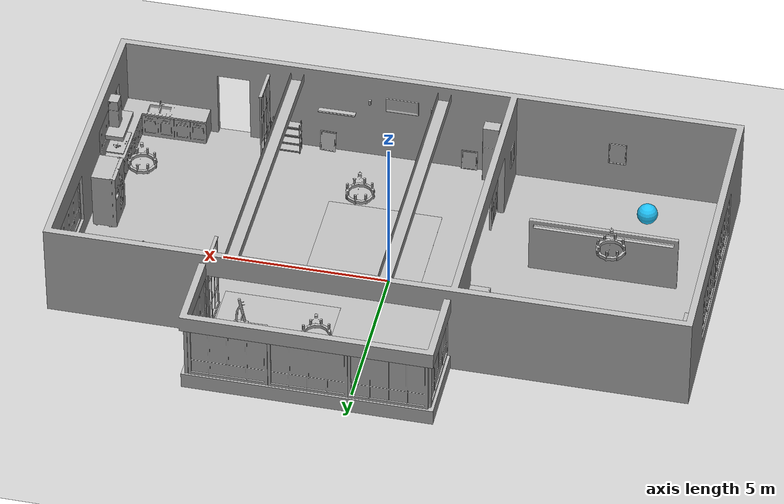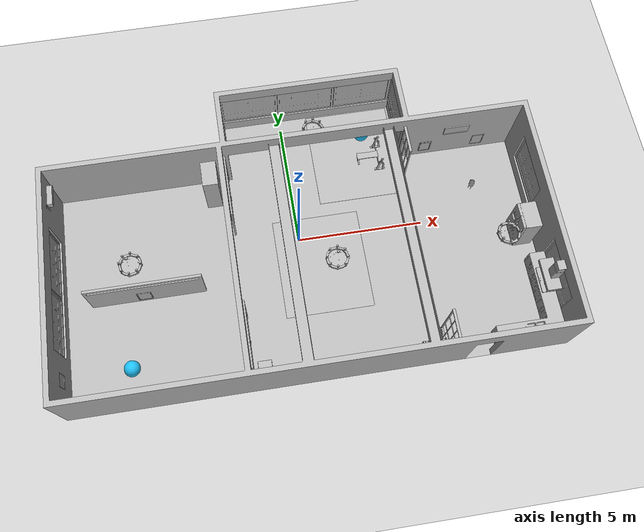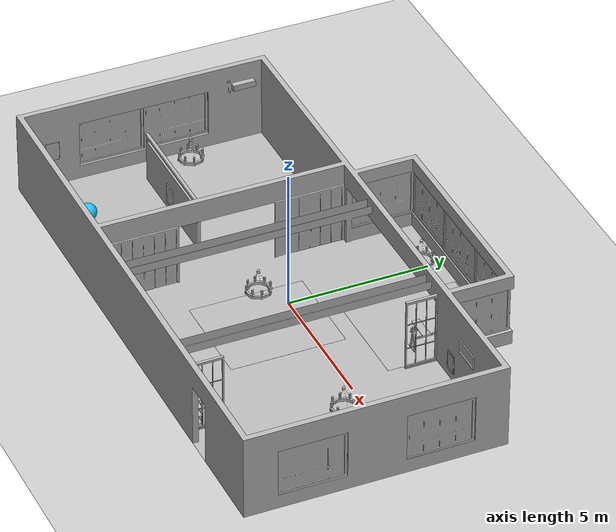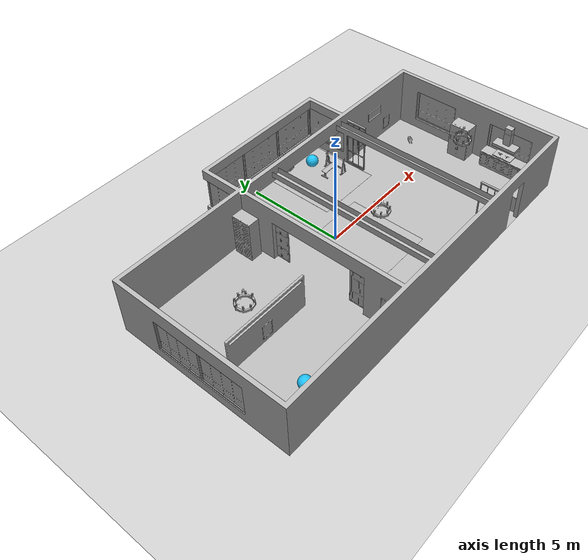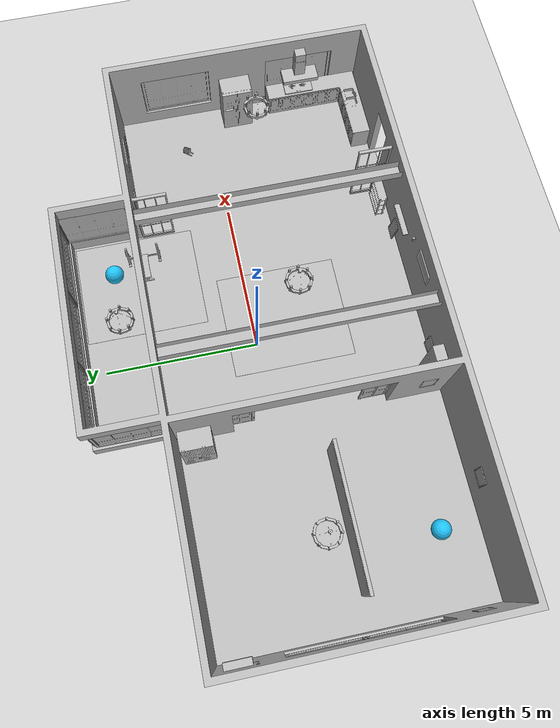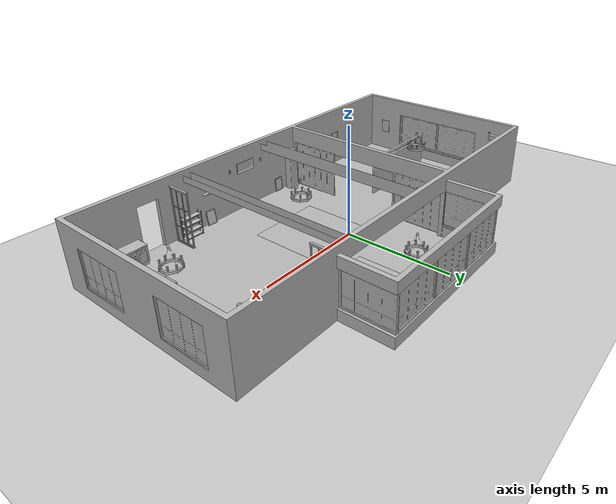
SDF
<sdf version="1.9">
 <world name="small_house">
  <physics name="1ms" type="ignored">
   <max_step_size>0.001</max_step_size>
   <real_time_factor>1.0</real_time_factor>
  </physics>
  <plugin filename="gz-sim-physics-system" name="gz::sim::systems::Physics"/>
  <plugin filename="gz-sim-user-commands-system" name="gz::sim::systems::UserCommands"/>
  <plugin filename="gz-sim-scene-broadcaster-system" name="gz::sim::systems::SceneBroadcaster"/>
  <plugin filename="gz-sim-sensors-system" name="gz::sim::systems::Sensors">
   <render_engine>ogre2</render_engine>
  </plugin>
  <scene><ambient>0.4 0.4 0.4 1</ambient><background>0.7 0.7 0.7 1</background><shadows>false</shadows></scene>
  <model name="ground_plane">
   <static>true</static>
   <link name="link">
    <collision name="collision">
     <geometry><plane><normal>0 0 1</normal><size>100 100</size></plane></geometry>
    </collision>
    <visual name="visual">
     <geometry><plane><normal>0 0 1</normal><size>100 100</size></plane></geometry>
     <material>
      <ambient>0.8 0.8 0.8 1</ambient>
      <diffuse>0.8 0.8 0.8 1</diffuse>
      <specular>0.8 0.8 0.8 1</specular>
     </material>
    </visual>
    <inertial>
     <mass>1.0</mass>
     <inertia><ixx>0.1</ixx><ixy>0</ixy><ixz>0</ixz><iyy>0.1</iyy><iyz>0</iyz><izz>0.1</izz></inertia>
    </inertial>
   </link>
  </model>
  <light type="directional" name="sun">
   <pose>0 0 10 0 0 0</pose>
   <diffuse>0.8 0.8 0.8 1</diffuse>
   <specular>0.2 0.2 0.2 1</specular>
   <direction>-0.5 0.1 -0.9</direction>
  </light>
  <model name="AirconditionerA_01_001">
   <static>true</static>
   <include><uri>model://aws_robomaker_residential_AirconditionerA_01</uri></include>
   <pose>-9.19941 2.41123 2.08454 0 -0 0</pose>
  </model>
  <model name="AirconditionerB_01_001">
   <static>true</static>
   <include><uri>model://aws_robomaker_residential_AirconditionerB_01</uri></include>
   <pose>-2.00466 -5.22661 0.00348 0 -0 0</pose>
  </model>
  <model name="Ball_01_001">
   <static>true</static>
   <include><uri>model://aws_robomaker_residential_Ball_01</uri></include>
   <pose>3.2955 4.22567 0.31868 0 -0 0</pose>
  </model>
  <model name="Ball_01_003">
   <static>true</static>
   <include><uri>model://aws_robomaker_residential_Ball_01</uri></include>
   <pose>-6.9455 -4.22174 0.31868 0 -0 0</pose>
  </model>
  <model name="Board_01_001">
   <static>true</static>
   <include><uri>model://aws_robomaker_residential_Board_01</uri></include>
   <pose>2.77907 -5.3927 1.53817 0 -0 0</pose>
  </model>
  <model name="Chandelier_01_001">
   <static>true</static>
   <include><uri>model://aws_robomaker_residential_Chandelier_01</uri></include>
   <pose>1.22106 4.15574 1.295 0 -0 0</pose>
  </model>
  <model name="Chandelier_01_002">
   <static>true</static>
   <include><uri>model://aws_robomaker_residential_Chandelier_01</uri></include>
   <pose>-6.45106 -0.69204 1.81 0 -0 0</pose>
  </model>
  <model name="Chandelier_01_003">
   <static>true</static>
   <include><uri>model://aws_robomaker_residential_Chandelier_01</uri></include>
   <pose>7.82406 -1.59 1.751 0 -0 0</pose>
  </model>
  <model name="Chandelier_01_004">
   <static>true</static>
   <include><uri>model://aws_robomaker_residential_Chandelier_01</uri></include>
   <pose>1.22106 -1.59204 1.7873 0 -0 0</pose>
  </model>
  <model name="Carpet_01_001">
   <static>true</static>
   <include><uri>model://aws_robomaker_residential_Carpet_01</uri></include>
   <pose>0.78505 -1.10665 0.00111 0 -0 0</pose>
  </model>
  <model name="Carpet_01_002">
   <static>true</static>
   <include><uri>model://aws_robomaker_residential_Carpet_01</uri></include>
   <pose>2.85405 3.45 0.00059 0 -0 0</pose>
  </model>
  <model name="CookingBench_01_001">
   <static>true</static>
   <include><uri>model://aws_robomaker_residential_CookingBench_01</uri></include>
   <pose>9.03838 -3.35114 0.90361 0 -0 3.13713</pose>
  </model>
  <model name="FitnessEquipment_01_001">
   <static>true</static>
   <include><uri>model://aws_robomaker_residential_FitnessEquipment_01</uri></include>
   <pose>3.48472 3.1691 0.00317 0 -0 0</pose>
  </model>
  <model name="FoldingDoor_01_001">
   <static>true</static>
   <include><uri>model://aws_robomaker_residential_FoldingDoor_01</uri></include>
   <pose>-2.4611 1.84422 0.04188 0 -0 0</pose>
  </model>
  <model name="FoldingDoor_01_002">
   <static>true</static>
   <include><uri>model://aws_robomaker_residential_FoldingDoor_01</uri></include>
   <pose>-2.4611 -4.05332 0.04188 0 -0 0</pose>
  </model>
  <model name="HouseWallB_01_001">
   <static>true</static>
   <include><uri>model://aws_robomaker_residential_HouseWallB_01</uri></include>
  </model>
  <model name="FloorB_01_001">
   <static>true</static>
   <include><uri>model://aws_robomaker_residential_FloorB_01</uri></include>
  </model>
  <model name="FoldingDoor_02_001">
   <static>true</static>
   <include><uri>model://aws_robomaker_residential_FoldingDoor_02</uri></include>
   <pose>4.67423 2.46451 0 0 -0 3.14159</pose>
  </model>
  <model name="FoldingDoor_02_002">
   <static>true</static>
   <include><uri>model://aws_robomaker_residential_FoldingDoor_02</uri></include>
   <pose>4.8912 -4.84968 0 0 -0 0</pose>
  </model>
  <model name="KitchenCabinet_01_001">
   <static>true</static>
   <include><uri>model://aws_robomaker_residential_KitchenCabinet_01</uri></include>
   <pose>8.00201 -3.83651 0.01207 0 -0 -3.14</pose>
  </model>
  <model name="LightC_01_001">
   <static>true</static>
   <include><uri>model://aws_robomaker_residential_LightC_01</uri></include>
   <pose>1.76957 -5.44437 2 0 -0 0</pose>
  </model>
  <model name="LightC_01_002">
   <static>true</static>
   <include><uri>model://aws_robomaker_residential_LightC_01</uri></include>
   <pose>-0.13825 -5.44437 2 0 -0 0</pose>
  </model>
  <model name="PortraitA_01">
   <static>true</static>
   <include><uri>model://aws_robomaker_residential_PortraitA_01</uri></include>
   <pose>-2.71236 -4.81754 1 0 -0 1.5668</pose>
  </model>
  <model name="PortraitB_01">
   <static>true</static>
   <include><uri>model://aws_robomaker_residential_PortraitB_01</uri></include>
   <pose>-1.27968 -5.42963 0 -0.0769 0 -3.11672</pose>
  </model>
  <model name="PortraitB_02">
   <static>true</static>
   <include><uri>model://aws_robomaker_residential_PortraitB_02</uri></include>
   <pose>5.73702 3.08031 0.3 0 -0 0</pose>
  </model>
  <model name="PortraitB_03">
   <static>true</static>
   <include><uri>model://aws_robomaker_residential_PortraitB_03</uri></include>
   <pose>3.07138 -5.34937 0.00549 -0.16843 0 3.10423</pose>
  </model>
  <model name="PortraitA_02">
   <static>true</static>
   <include><uri>model://aws_robomaker_residential_PortraitA_02</uri></include>
   <pose>7.93702 3.08031 0.3 0 -0 3.14</pose>
  </model>
  <model name="PortraitC_01">
   <static>true</static>
   <include><uri>model://aws_robomaker_residential_PortraitC_01</uri></include>
   <pose>-9.2949 -4.52608 1 0 -0 1.55473</pose>
  </model>
  <model name="PortraitD_01">
   <static>true</static>
   <include><uri>model://aws_robomaker_residential_PortraitD_01</uri></include>
   <pose>0.78976 -5.47873 1.8 0 -0 3.13853</pose>
  </model>
  <model name="PortraitD_02">
   <static>true</static>
   <include><uri>model://aws_robomaker_residential_PortraitD_02</uri></include>
   <pose>6.87018 3.08031 1.48844 0 -0 0</pose>
  </model>
  <model name="PortraitE_01">
   <static>true</static>
   <include><uri>model://aws_robomaker_residential_PortraitE_01</uri></include>
   <pose>-5.77309 -5.49247 1 0 -0 3.13263</pose>
  </model>
  <model name="PortraitE_02">
   <static>true</static>
   <include><uri>model://aws_robomaker_residential_PortraitE_02</uri></include>
   <pose>-6.19303 -1.59021 0.3 0 -0 0.00429</pose>
  </model>
  <model name="Rangehood_01_001">
   <static>true</static>
   <include><uri>model://aws_robomaker_residential_Rangehood_01</uri></include>
   <pose>9.01979 -3.36994 1.50761 0 -0 0</pose>
  </model>
  <model name="Refrigerator_01_001">
   <static>true</static>
   <include><uri>model://aws_robomaker_residential_Refrigerator_01</uri></include>
   <pose>8.70273 -1.03203 0 0 -0 -1.5635</pose>
  </model>
  <model name="ShoeRack_01_001">
   <static>true</static>
   <include><uri>model://aws_robomaker_residential_ShoeRack_01</uri></include>
   <pose>4.29798 -5.17357 0 0 -0 0</pose>
  </model>
  <model name="Tableware_01_001">
   <static>true</static>
   <include><uri>model://aws_robomaker_residential_Tableware_01</uri></include>
   <pose>7.15317 0.98277 0.81781 -0.00124 -0.00098 1.02476</pose>
  </model>
  <model name="RoomWall_01_001">
   <static>true</static>
   <include><uri>model://aws_robomaker_residential_RoomWall_01</uri></include>
   <pose>-6.09755 -1.49618 0.02812 0 -0 0</pose>
  </model>
  <model name="Wardrobe_01_001">
   <static>true</static>
   <include><uri>model://aws_robomaker_residential_Wardrobe_01</uri></include>
   <pose>-3.14671 2.4762 0.0007 0 -0 -1.56967</pose>
  </model>
  <model name="RoomWindow_01_001">
   <static>true</static>
   <include><uri>model://aws_robomaker_residential_RoomWindow_01</uri></include>
   <pose>-9.4186 -0.02629 0.50274 0 -0 0</pose>
  </model>
  <model name="RoomWindow_01_002">
   <static>true</static>
   <include><uri>model://aws_robomaker_residential_RoomWindow_01</uri></include>
   <pose>-9.4186 -2.37409 0.50274 0 -0 0</pose>
  </model>
  <model name="RoomWindow_01_003">
   <static>true</static>
   <include><uri>model://aws_robomaker_residential_RoomWindow_01</uri></include>
   <pose>9.42262 -3.37398 0.50274 0 -0 -3.1361</pose>
  </model>
  <model name="RoomWindow_01_004">
   <static>true</static>
   <include><uri>model://aws_robomaker_residential_RoomWindow_01</uri></include>
   <pose>9.42256 0.96852 0.49658 0 -0 -3.1361</pose>
  </model>
  <model name="RoomWindow_01_005">
   <static>true</static>
   <include><uri>model://aws_robomaker_residential_RoomWindow_01</uri></include>
   <pose>4.72232 4.47028 0.50274 0 -0 -3.1361</pose>
  </model>
  <model name="RoomWindow_01_006">
   <static>true</static>
   <include><uri>model://aws_robomaker_residential_RoomWindow_01</uri></include>
   <pose>3.48852 5.60069 0.50274 0 -0 -1.56627</pose>
  </model>
  <model name="RoomWindow_01_007">
   <static>true</static>
   <include><uri>model://aws_robomaker_residential_RoomWindow_01</uri></include>
   <pose>1.14095 5.60069 0.50274 0 -0 -1.56627</pose>
  </model>
  <model name="RoomWindow_01_008">
   <static>true</static>
   <include><uri>model://aws_robomaker_residential_RoomWindow_01</uri></include>
   <pose>-1.19934 5.60069 0.50274 0 -0 -1.56627</pose>
  </model>
  <model name="RoomWindow_01_009">
   <static>true</static>
   <include><uri>model://aws_robomaker_residential_RoomWindow_01</uri></include>
   <pose>-2.39662 4.38761 0.50274 0 -0 0</pose>
  </model>
  <light name="LivingRoom_CeilingLight_0" type="point">
   <pose>1.1943 4.15576 2.2 0 -0 0</pose>
   <diffuse>0.5 0.5 0.5 1</diffuse>
   <specular>0.1 0.1 0.1 1</specular>
   <attenuation>
    <range>20</range>
    <constant>0.32</constant>
    <linear>0.01</linear>
    <quadratic>0.03</quadratic>
   </attenuation>
   <cast_shadows>false</cast_shadows>
   <direction>0 0 -1</direction>
  </light>
  <light name="LivingRoom_CeilingLight_1" type="point">
   <pose>1.1943 -1.59 2.2 0 -0 0</pose>
   <diffuse>0.5 0.5 0.5 1</diffuse>
   <specular>0.1 0.1 0.1 1</specular>
   <attenuation>
    <range>20</range>
    <constant>0.05</constant>
    <linear>0.01</linear>
    <quadratic>0.09</quadratic>
   </attenuation>
   <cast_shadows>false</cast_shadows>
   <direction>0 0 -1</direction>
  </light>
  <light name="LivingRoom_WallLight_0" type="point">
   <pose>1.76956 -5.44437 2.2 0 -0 0</pose>
   <diffuse>0.24 0.24 0.24 1</diffuse>
   <specular>0.1 0.1 0.1 1</specular>
   <attenuation>
    <range>20</range>
    <constant>0.12</constant>
    <linear>0</linear>
    <quadratic>0.03</quadratic>
   </attenuation>
   <direction>0 0 -1</direction>
  </light>
  <light name="LivingRoom_WallLight_1" type="point">
   <pose>-0.13826 -5.44437 2.2 0 -0 0</pose>
   <diffuse>0.24 0.24 0.24 1</diffuse>
   <specular>0.1 0.1 0.1 1</specular>
   <attenuation>
    <range>20</range>
    <constant>0.12</constant>
    <linear>0</linear>
    <quadratic>0.03</quadratic>
   </attenuation>
   <direction>0 0 -1</direction>
  </light>
  <light name="TV_Light_0" type="point">
   <pose>0.8269 -4.93958 1.1 0 -0 0</pose>
   <diffuse>0.31 0.31 0.35 1</diffuse>
   <specular>0.1 0.1 0.1 1</specular>
   <attenuation>
    <range>3</range>
    <constant>0.1</constant>
    <linear>0.04</linear>
    <quadratic>0.5</quadratic>
   </attenuation>
   <direction>0 0 -1</direction>
  </light>
  <light name="BedRoom_Portrait_Light_0" type="spot">
   <pose>-6.19 -1.8297 1.5587 0.3 -0 0</pose>
   <diffuse>0.5 0.5 0.5 1</diffuse>
   <specular>0.1 0.1 0.1 1</specular>
   <attenuation>
    <range>20</range>
    <constant>0.5</constant>
    <linear>0.01</linear>
    <quadratic>0</quadratic>
   </attenuation>
   <spot><inner_angle>0.6</inner_angle><outer_angle>1</outer_angle><falloff>1</falloff></spot>
   <direction>0 0 -1</direction>
  </light>
  <light name="BedRoom_CeilingLight_0" type="point">
   <pose>-6.45106 -0.69204 2 0 -0 0</pose>
   <diffuse>0.5 0.5 0.5 1</diffuse>
   <specular>0.1 0.1 0.1 1</specular>
   <attenuation>
    <range>20</range>
    <constant>0.32</constant>
    <linear>0.01</linear>
    <quadratic>0.03</quadratic>
   </attenuation>
   <cast_shadows>false</cast_shadows>
   <direction>0 0 -1</direction>
  </light>
  <light name="Kitchen_CeilingLight_0" type="point">
   <pose>7.8582 -1.5905 2.28 0 -0 0</pose>
   <diffuse>0.5 0.5 0.5 1</diffuse>
   <specular>0.1 0.1 0.1 1</specular>
   <attenuation>
    <range>20</range>
    <constant>0.3</constant>
    <linear>0.01</linear>
    <quadratic>0.01</quadratic>
   </attenuation>
   <cast_shadows>false</cast_shadows>
   <direction>0 0 -1</direction>
  </light>
 </world>
</sdf>

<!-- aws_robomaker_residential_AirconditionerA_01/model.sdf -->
<sdf version="1.6">
  <model name="aws_robomaker_residential_AirconditionerA_01">
    <link name="link">
      <inertial>
        <mass>1</mass>
            <inertia>
        <ixx>0.1</ixx><ixy>0</ixy><ixz>0</ixz>
        <iyy>0.1</iyy><iyz>0</iyz>
        <izz>0.1</izz>
      </inertia>
    </inertial>
      <collision name="collision">
        <geometry>
          <mesh>
            <uri>model://aws_robomaker_residential_AirconditionerA_01/meshes/aws_AirconditionerA_01_collision.DAE</uri>
            <scale>1 1 1</scale>
          </mesh>
        </geometry>
      </collision>
      <visual name="visual">
	    <geometry>
          <mesh>
            <uri>model://aws_robomaker_residential_AirconditionerA_01/meshes/aws_AirconditionerA_01_visual.DAE</uri>
          </mesh>
        </geometry>
      <meta> <layer> 1 </layer></meta>
</visual>
    </link>
	<static>1</static>
  </model>
</sdf>

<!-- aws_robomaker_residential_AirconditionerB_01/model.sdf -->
<sdf version="1.6">
  <model name="aws_robomaker_residential_AirconditionerB_01">
    <link name="link">
      <inertial>
        <mass>1</mass>
            <inertia>
        <ixx>0.1</ixx><ixy>0</ixy><ixz>0</ixz>
        <iyy>0.1</iyy><iyz>0</iyz>
        <izz>0.1</izz>
      </inertia>
    </inertial>
      <collision name="collision">
        <geometry>
          <mesh>
            <uri>model://aws_robomaker_residential_AirconditionerB_01/meshes/aws_AirconditionerB_01_collision.DAE</uri>
            <scale>1 1 1</scale>
          </mesh>
        </geometry>
      </collision>
      <visual name="visual">
	    <geometry>
          <mesh>
            <uri>model://aws_robomaker_residential_AirconditionerB_01/meshes/aws_AirconditionerB_01_visual.DAE</uri>
          </mesh>
        </geometry>
      <meta> <layer> 1 </layer></meta>
</visual>
    </link>
  </model>
</sdf>

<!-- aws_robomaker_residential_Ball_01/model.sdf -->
<sdf version="1.6">
  <model name="aws_robomaker_residential_Ball_01">
    <link name="link">
      <inertial>
        <mass>0.12</mass>

          <inertia>
            <ixx>0.030752</ixx>
            <ixy>0</ixy>
            <ixz>0</ixz>
            <iyy>0.030752</iyy>
            <iyz>0</iyz>
            <izz>0.030752</izz>
          </inertia>
      </inertial>
      <collision name="collision">

        <geometry>

          <sphere>
            <radius>0.31 </radius>
          </sphere>

        </geometry>

        <surface>
          <friction>
            <ode>
              <mu>0.85</mu>
              <mu2>0.85</mu2>
            </ode>
          </friction>

          <contact>
            <ode>
              <kd>8500</kd>
              <max_vel>5.1</max_vel>
            </ode>
          </contact>
        </surface>

      </collision>
      <visual name="visual">
	    <geometry>

          <sphere>
            <radius>0.31 </radius>
          </sphere>
      </geometry>
          <material>
            <diffuse>0.12 0.76 0.97 1</diffuse>
            <ambient>0.03 0.21 0.27 1</ambient>
          </material>

      <meta> <layer> 1 </layer></meta>
</visual>
    </link>
  </model>
</sdf>

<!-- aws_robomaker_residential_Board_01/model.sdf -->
<sdf version="1.6">
  <model name="aws_robomaker_residential_Board_01">
    <link name="link">
      <inertial>
        <mass>1</mass>
            <inertia>
        <ixx>0.1</ixx><ixy>0</ixy><ixz>0</ixz>
        <iyy>0.1</iyy><iyz>0</iyz>
        <izz>0.1</izz>
      </inertia>
    </inertial>
      <collision name="collision">
        <geometry>
          <mesh>
            <uri>model://aws_robomaker_residential_Board_01/meshes/aws_Board_01_collision.DAE</uri>
            <scale>1 1 1</scale>
          </mesh>
        </geometry>
      </collision>
      <visual name="visual">
	    <geometry>
          <mesh>
            <uri>model://aws_robomaker_residential_Board_01/meshes/aws_Board_01_visual.DAE</uri>
          </mesh>
        </geometry>
      <meta> <layer> 2 </layer></meta>
</visual>
    </link>

    <static>1</static>
  </model>
</sdf>

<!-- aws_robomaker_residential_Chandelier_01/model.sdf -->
<sdf version="1.6">
  <model name="aws_robomaker_residential_Chandelier_01">
    <link name="link">
      <inertial>
        <mass>1</mass>
            <inertia>
        <ixx>0.1</ixx><ixy>0</ixy><ixz>0</ixz>
        <iyy>0.1</iyy><iyz>0</iyz>
        <izz>0.1</izz>
      </inertia>
    </inertial>
      <collision name="collision">
        <geometry>
          <mesh>
            <uri>model://aws_robomaker_residential_Chandelier_01/meshes/aws_Chandelier_01_collision.DAE</uri>
            <scale>1 1 1</scale>
          </mesh>
        </geometry>
      </collision>
      <visual name="visual">
	    <geometry>
          <mesh>
            <uri>model://aws_robomaker_residential_Chandelier_01/meshes/aws_Chandelier_01_visual.DAE</uri>
          </mesh>
        </geometry>
      <meta> <layer> 2 </layer></meta>
</visual>
    </link>
	<static>1</static>
  </model>
</sdf>

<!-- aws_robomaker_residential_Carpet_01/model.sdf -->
<sdf version="1.6">
  <model name="aws_robomaker_residential_Carpet_01">
    <link name="link">
      <inertial>
        <mass>8.1</mass>
            <inertia>
        <ixx>0.1</ixx><ixy>0</ixy><ixz>0</ixz>
        <iyy>0.1</iyy><iyz>0</iyz>
        <izz>0.1</izz>
      </inertia>
    </inertial>

      <collision name="collision">

        <geometry>
          <mesh>
            <uri>model://aws_robomaker_residential_Carpet_01/meshes/aws_Carpet_01_collision.DAE</uri>
            <scale>1 1 0.95</scale>
          </mesh>
        </geometry>

        <surface>
          <friction>
            <ode>
              <mu>100</mu>
              <mu2>50</mu2>
            </ode>
          </friction>
          <contact>
            <ode>
            </ode>
          </contact>
        </surface>

        <pose>0 0 -0.01 0 0 0 </pose>
      </collision>

      <visual name="visual">
	    <geometry>
          <mesh>
            <uri>model://aws_robomaker_residential_Carpet_01/meshes/aws_Carpet_01_visual.DAE</uri>
          </mesh>
        </geometry>
      <meta> <layer> 1 </layer></meta>
</visual>
    </link>

    <static>1</static>

  </model>
</sdf>

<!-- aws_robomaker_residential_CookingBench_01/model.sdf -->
<sdf version="1.6">
  <model name="aws_robomaker_residential_CookingBench_01">
    <link name="link">
      <inertial>
        <mass>1</mass>
            <inertia>
        <ixx>0.1</ixx><ixy>0</ixy><ixz>0</ixz>
        <iyy>0.1</iyy><iyz>0</iyz>
        <izz>0.1</izz>
      </inertia>
    </inertial>
      <collision name="collision">
        <geometry>
          <mesh>
            <uri>model://aws_robomaker_residential_CookingBench_01/meshes/aws_CookingBench_01_collision.DAE</uri>
            <scale>1 1 1</scale>
          </mesh>
        </geometry>
      </collision>
      <visual name="visual">
	    <geometry>
          <mesh>
            <uri>model://aws_robomaker_residential_CookingBench_01/meshes/aws_CookingBench_01_visual.DAE</uri>
          </mesh>
        </geometry>
      <meta> <layer> 1 </layer></meta>
</visual>
    </link>
  </model>
</sdf>

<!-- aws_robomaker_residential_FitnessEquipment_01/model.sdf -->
<sdf version="1.6">
  <model name="aws_robomaker_residential_FitnessEquipment_01">
    <link name="link">
      <inertial>
        <mass>80</mass>
            <inertia>
        <ixx>0.1</ixx><ixy>0</ixy><ixz>0</ixz>
        <iyy>0.1</iyy><iyz>0</iyz>
        <izz>0.1</izz>
      </inertia>
    </inertial>
      <collision name="collision">
        <geometry>
          <mesh>
            <uri>model://aws_robomaker_residential_FitnessEquipment_01/meshes/aws_FitnessEquipment_01_collision.DAE</uri>
            <scale>1 1 1</scale>
          </mesh>
        </geometry>
      </collision>
      <visual name="visual">
	    <geometry>
          <mesh>
            <uri>model://aws_robomaker_residential_FitnessEquipment_01/meshes/aws_FitnessEquipment_01_visual.DAE</uri>
          </mesh>
        </geometry>
      <meta> <layer> 1 </layer></meta>
</visual>
    </link>
  <static>1</static>
  </model>
</sdf>

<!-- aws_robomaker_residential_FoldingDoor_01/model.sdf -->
<sdf version="1.6">
  <model name="aws_robomaker_residential_FoldingDoor_01">
    <link name="link">
      <inertial>
        <mass>1</mass>
            <inertia>
        <ixx>0.1</ixx><ixy>0</ixy><ixz>0</ixz>
        <iyy>0.1</iyy><iyz>0</iyz>
        <izz>0.1</izz>
      </inertia>
    </inertial>
      <collision name="collision">
        <geometry>
          <mesh>
            <uri>model://aws_robomaker_residential_FoldingDoor_01/meshes/aws_FoldingDoor_01_collision.DAE</uri>
            <scale>1 1 1</scale>
          </mesh>
        </geometry>
      </collision>
      <visual name="visual">
	    <geometry>
          <mesh>
            <uri>model://aws_robomaker_residential_FoldingDoor_01/meshes/aws_FoldingDoor_01_visual.DAE</uri>
          </mesh>
        </geometry>
      <meta> <layer> 2 </layer></meta>
</visual>
    </link>
	<static>1</static>
  </model>
</sdf>

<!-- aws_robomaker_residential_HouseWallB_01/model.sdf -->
<sdf version="1.6">
  <model name="aws_robomaker_residential_HouseWallB_01">
    <link name="link">
      <inertial>
        <mass>1</mass>
            <inertia>
        <ixx>0.1</ixx><ixy>0</ixy><ixz>0</ixz>
        <iyy>0.1</iyy><iyz>0</iyz>
        <izz>0.1</izz>
      </inertia>
    </inertial>
      <collision name="collision">
        <geometry>
          <mesh>
            <uri>model://aws_robomaker_residential_HouseWallB_01/meshes/aws_HouseWallB_01_collision.DAE</uri>
            <scale>1 1 1</scale>
          </mesh>
        </geometry>
      </collision>
      <visual name="visual">
	    <geometry>
          <mesh>
            <uri>model://aws_robomaker_residential_HouseWallB_01/meshes/aws_HouseWallB_01_visual.DAE</uri>
          </mesh>
        </geometry>
      <meta> <layer> 2 </layer></meta>
</visual>
    </link>
<static>1</static>
  </model>
</sdf>

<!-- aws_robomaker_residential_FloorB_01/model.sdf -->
<sdf version="1.6">
  <model name="aws_robomaker_residential_FloorB_01">
    <link name="link">
      <inertial>
        <mass>100</mass>
            <inertia>
        <ixx>0.1</ixx><ixy>0</ixy><ixz>0</ixz>
        <iyy>0.1</iyy><iyz>0</iyz>
        <izz>0.1</izz>
      </inertia>
    </inertial>

      <collision name="collision">
        <geometry>
          <mesh>
            <uri>model://aws_robomaker_residential_FloorB_01/meshes/aws_FloorB_01_collision.DAE</uri>
            <scale>1 1 0.9</scale>
          </mesh>
        </geometry>

        <surface>
          <friction>
            <ode>
              <mu>100</mu>
              <mu2>50</mu2>
            </ode>
          </friction>
        </surface>
      </collision>

      <visual name="visual">
	    <geometry>
          <mesh>
            <uri>model://aws_robomaker_residential_FloorB_01/meshes/aws_FloorB_01_visual.DAE</uri>
          </mesh>
        </geometry>
      <meta> <layer> 1 </layer></meta>
</visual>
    </link>

	<static>1</static>
  </model>
</sdf>

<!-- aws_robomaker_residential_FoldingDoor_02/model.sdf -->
<sdf version="1.6">
  <model name="aws_robomaker_residential_FoldingDoor_02">
    <link name="link">
      <inertial>
        <mass>1</mass>
            <inertia>
        <ixx>0.1</ixx><ixy>0</ixy><ixz>0</ixz>
        <iyy>0.1</iyy><iyz>0</iyz>
        <izz>0.1</izz>
      </inertia>
    </inertial>
      <collision name="collision">
        <geometry>
          <mesh>
            <uri>model://aws_robomaker_residential_FoldingDoor_02/meshes/aws_FoldingDoor_02_collision.DAE</uri>
            <scale>1 1 1</scale>
          </mesh>
        </geometry>
      </collision>
      <visual name="visual">
	    <geometry>
          <mesh>
            <uri>model://aws_robomaker_residential_FoldingDoor_02/meshes/aws_FoldingDoor_02_visual.DAE</uri>
          </mesh>
        </geometry>
      <meta> <layer> 2 </layer></meta>
</visual>
    </link>
<static>1</static>
  </model>
</sdf>

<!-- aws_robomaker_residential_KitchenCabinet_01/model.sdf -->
<sdf version="1.6">
  <model name="aws_robomaker_residential_KitchenCabinet_01">
    <link name="link">
      <inertial>
        <mass>1</mass>
            <inertia>
        <ixx>0.1</ixx><ixy>0</ixy><ixz>0</ixz>
        <iyy>0.1</iyy><iyz>0</iyz>
        <izz>0.1</izz>
      </inertia>
    </inertial>
      <collision name="collision">
        <laser_retro>0</laser_retro>
        <max_contacts>10</max_contacts>
        <geometry>
          <mesh>
            <uri>model://aws_robomaker_residential_KitchenCabinet_01/meshes/aws_KitchenCabinet_01_collision.DAE</uri>
            <scale>1 1 1</scale>
          </mesh>
        </geometry>
      </collision>
      <visual name="visual">
	    <geometry>
          <mesh>
            <uri>model://aws_robomaker_residential_KitchenCabinet_01/meshes/aws_KitchenCabinet_01_visual.DAE</uri>
          </mesh>
        </geometry>
      <meta> <layer> 1 </layer></meta>
</visual>
    </link>

    <static>1</static>
  </model>
</sdf>

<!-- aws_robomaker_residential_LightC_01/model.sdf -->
<sdf version="1.6">
  <model name="aws_robomaker_residential_LightC_01">
    <link name="link">
      <inertial>
        <mass>1</mass>
            <inertia>
        <ixx>0.1</ixx><ixy>0</ixy><ixz>0</ixz>
        <iyy>0.1</iyy><iyz>0</iyz>
        <izz>0.1</izz>
      </inertia>
    </inertial>
      <collision name="collision">
        <geometry>
          <mesh>
            <uri>model://aws_robomaker_residential_LightC_01/meshes/aws_LightC_01_collision.DAE</uri>
            <scale>1 1 1</scale>
          </mesh>
        </geometry>
      </collision>
      <visual name="visual">
	    <geometry>
          <mesh>
            <uri>model://aws_robomaker_residential_LightC_01/meshes/aws_LightC_01_visual.DAE</uri>
          </mesh>
        </geometry>
      <meta> <layer> 2 </layer></meta>
</visual>
    </link>
	<static>1</static>
  </model>
</sdf>

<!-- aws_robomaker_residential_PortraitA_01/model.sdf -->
<sdf version="1.6">
  <model name="aws_robomaker_residential_PortraitA_01">
    <link name="link">
      <inertial>
        <mass>1</mass>
            <inertia>
        <ixx>0.1</ixx><ixy>0</ixy><ixz>0</ixz>
        <iyy>0.1</iyy><iyz>0</iyz>
        <izz>0.1</izz>
      </inertia>
    </inertial>
      <collision name="collision">
        <geometry>
          <mesh>
            <uri>model://aws_robomaker_residential_PortraitA_01/meshes/aws_PortraitA_01_collision.DAE</uri>
            <scale>1 1 1</scale>
          </mesh>
        </geometry>
      </collision>
      <visual name="visual">
	    <geometry>
          <mesh>
            <uri>model://aws_robomaker_residential_PortraitA_01/meshes/aws_PortraitA_01_visual.DAE</uri>
          </mesh>
        </geometry>
      <meta> <layer> 2 </layer></meta>
</visual>
    </link>
	<static>1</static>
  </model>
</sdf>

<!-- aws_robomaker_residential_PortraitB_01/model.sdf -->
<sdf version="1.6">
  <model name="aws_robomaker_residential_PortraitB_01">
    <link name="link">
      <inertial>
        <mass>1</mass>
            <inertia>
        <ixx>0.1</ixx><ixy>0</ixy><ixz>0</ixz>
        <iyy>0.1</iyy><iyz>0</iyz>
        <izz>0.1</izz>
      </inertia>
    </inertial>
      <collision name="collision">
        <geometry>
          <mesh>
            <uri>model://aws_robomaker_residential_PortraitB_01/meshes/aws_PortraitB_01_collision.DAE</uri>
            <scale>1 1 1</scale>
          </mesh>
        </geometry>
      </collision>
      <visual name="visual">
	    <geometry>
          <mesh>
            <uri>model://aws_robomaker_residential_PortraitB_01/meshes/aws_PortraitB_01_visual.DAE</uri>
          </mesh>
        </geometry>
      <meta> <layer> 2 </layer></meta>
</visual>
    </link>
	<static>1</static>
  </model>
</sdf>

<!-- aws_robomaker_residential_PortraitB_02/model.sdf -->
<sdf version="1.6">
  <model name="aws_robomaker_residential_PortraitB_02">
    <link name="link">
      <inertial>
        <mass>1</mass>
            <inertia>
        <ixx>0.1</ixx><ixy>0</ixy><ixz>0</ixz>
        <iyy>0.1</iyy><iyz>0</iyz>
        <izz>0.1</izz>
      </inertia>
    </inertial>
      <collision name="collision">
        <geometry>
          <mesh>
            <uri>model://aws_robomaker_residential_PortraitB_02/meshes/aws_PortraitB_01_collision.DAE</uri>
            <scale>1 1 1</scale>
          </mesh>
        </geometry>
      </collision>
      <visual name="visual">
	    <geometry>
          <mesh>
            <uri>model://aws_robomaker_residential_PortraitB_02/meshes/aws_PortraitB_01_visual.DAE</uri>
          </mesh>
        </geometry>
      <meta> <layer> 2 </layer></meta>
</visual>
    </link>
	<static>1</static>
  </model>
</sdf>

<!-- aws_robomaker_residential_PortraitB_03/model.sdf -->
<sdf version="1.6">
  <model name="aws_robomaker_residential_PortraitB_03">
    <link name="link">
      <inertial>
        <mass>1</mass>
            <inertia>
        <ixx>0.1</ixx><ixy>0</ixy><ixz>0</ixz>
        <iyy>0.1</iyy><iyz>0</iyz>
        <izz>0.1</izz>
      </inertia>
    </inertial>
      <collision name="collision">
        <geometry>
          <mesh>
            <uri>model://aws_robomaker_residential_PortraitB_03/meshes/aws_PortraitB_01_collision.DAE</uri>
            <scale>1 1 1</scale>
          </mesh>
        </geometry>
      </collision>
      <visual name="visual">
	    <geometry>
          <mesh>
            <uri>model://aws_robomaker_residential_PortraitB_03/meshes/aws_PortraitB_01_visual.DAE</uri>
          </mesh>
        </geometry>
      <meta> <layer> 2 </layer></meta>
</visual>
    </link>
	<static>1</static>
  </model>
</sdf>

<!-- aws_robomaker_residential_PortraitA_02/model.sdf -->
<sdf version="1.6">
  <model name="aws_robomaker_residential_PortraitA_02">
    <link name="link">
      <inertial>
        <mass>1</mass>
            <inertia>
        <ixx>0.1</ixx><ixy>0</ixy><ixz>0</ixz>
        <iyy>0.1</iyy><iyz>0</iyz>
        <izz>0.1</izz>
      </inertia>
    </inertial>
      <collision name="collision">
        <geometry>
          <mesh>
            <uri>model://aws_robomaker_residential_PortraitA_02/meshes/aws_PortraitA_01_collision.DAE</uri>
            <scale>1 1 1</scale>
          </mesh>
        </geometry>
      </collision>
      <visual name="visual">
	    <geometry>
          <mesh>
            <uri>model://aws_robomaker_residential_PortraitA_02/meshes/aws_PortraitA_01_visual.DAE</uri>
          </mesh>
        </geometry>
      <meta> <layer> 2 </layer></meta>
</visual>
    </link>
	<static>1</static>
  </model>
</sdf>

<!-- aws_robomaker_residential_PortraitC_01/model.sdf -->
<sdf version="1.6">
  <model name="aws_robomaker_residential_PortraitC_01">
    <link name="link">
      <inertial>
        <mass>1</mass>
            <inertia>
        <ixx>0.1</ixx><ixy>0</ixy><ixz>0</ixz>
        <iyy>0.1</iyy><iyz>0</iyz>
        <izz>0.1</izz>
      </inertia>
    </inertial>
      <collision name="collision">
        <geometry>
          <mesh>
            <uri>model://aws_robomaker_residential_PortraitC_01/meshes/aws_PortraitC_01_collision.DAE</uri>
            <scale>1 1 1</scale>
          </mesh>
        </geometry>
      </collision>
      <visual name="visual">
	    <geometry>
          <mesh>
            <uri>model://aws_robomaker_residential_PortraitC_01/meshes/aws_PortraitC_01_visual.DAE</uri>
          </mesh>
        </geometry>
      <meta> <layer> 2 </layer></meta>
</visual>
    </link>
	<static>1</static>
  </model>
</sdf>

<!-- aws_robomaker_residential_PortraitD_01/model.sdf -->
<sdf version="1.6">
  <model name="aws_robomaker_residential_PortraitD_01">
    <link name="link">

      <inertial>
        <mass>1.5</mass>
            <inertia>
        <ixx>0.1</ixx><ixy>0</ixy><ixz>0</ixz>
        <iyy>0.1</iyy><iyz>0</iyz>
        <izz>0.1</izz>
      </inertia>
    </inertial>

      <collision name="collision">
        <geometry>
          <mesh>
            <uri>model://aws_robomaker_residential_PortraitD_01/meshes/aws_PortraitD_01_collision.DAE</uri>
            <scale>1 1 1</scale>
          </mesh>
        </geometry>

      </collision>

      <visual name="visual">
	    <geometry>
          <mesh>
            <uri>model://aws_robomaker_residential_PortraitD_01/meshes/aws_PortraitD_01_visual.DAE</uri>
          </mesh>
        </geometry>
      <meta> <layer> 2 </layer></meta>
</visual>
    </link>
	<static>1</static>
  </model>
</sdf>

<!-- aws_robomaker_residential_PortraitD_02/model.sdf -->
<sdf version="1.6">
  <model name="aws_robomaker_residential_PortraitD_02">
    <link name="link">

      <inertial>
        <mass>1.5</mass>
            <inertia>
        <ixx>0.1</ixx><ixy>0</ixy><ixz>0</ixz>
        <iyy>0.1</iyy><iyz>0</iyz>
        <izz>0.1</izz>
      </inertia>
    </inertial>

      <collision name="collision">
        <geometry>
          <mesh>
            <uri>model://aws_robomaker_residential_PortraitD_02/meshes/aws_PortraitD_01_collision.DAE</uri>
            <scale>1 1 1</scale>
          </mesh>
        </geometry>

      </collision>

      <visual name="visual">
	    <geometry>
          <mesh>
            <uri>model://aws_robomaker_residential_PortraitD_02/meshes/aws_PortraitD_01_visual.DAE</uri>
          </mesh>
        </geometry>
      <meta> <layer> 2 </layer></meta>
</visual>
    </link>
	<static>1</static>
  </model>
</sdf>

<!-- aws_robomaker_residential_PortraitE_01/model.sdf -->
<sdf version="1.6">
  <model name="aws_robomaker_residential_PortraitE_01">
    <link name="link">
      <inertial>
        <mass>1</mass>
            <inertia>
        <ixx>0.1</ixx><ixy>0</ixy><ixz>0</ixz>
        <iyy>0.1</iyy><iyz>0</iyz>
        <izz>0.1</izz>
      </inertia>
    </inertial>
      <collision name="collision">
        <geometry>
          <mesh>
            <uri>model://aws_robomaker_residential_PortraitE_01/meshes/aws_PortraitE_01_collision.DAE</uri>
            <scale>1 1 1</scale>
          </mesh>
        </geometry>
      </collision>
      <visual name="visual">
	    <geometry>
          <mesh>
            <uri>model://aws_robomaker_residential_PortraitE_01/meshes/aws_PortraitE_01_visual.DAE</uri>
          </mesh>
        </geometry>
      <meta> <layer> 2 </layer></meta>
</visual>
    </link>
	<static>1</static>
  </model>
</sdf>

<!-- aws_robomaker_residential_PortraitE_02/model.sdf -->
<sdf version="1.6">
  <model name="aws_robomaker_residential_PortraitE_02">
    <link name="link">
      <inertial>
        <mass>1</mass>
            <inertia>
        <ixx>0.1</ixx><ixy>0</ixy><ixz>0</ixz>
        <iyy>0.1</iyy><iyz>0</iyz>
        <izz>0.1</izz>
      </inertia>
    </inertial>
      <collision name="collision">
        <geometry>
          <mesh>
            <uri>model://aws_robomaker_residential_PortraitE_02/meshes/aws_PortraitE_01_collision.DAE</uri>
            <scale>1 1 1</scale>
          </mesh>
        </geometry>
      </collision>
      <visual name="visual">
	    <geometry>
          <mesh>
            <uri>model://aws_robomaker_residential_PortraitE_02/meshes/aws_PortraitE_01_visual.DAE</uri>
          </mesh>
        </geometry>
      <meta> <layer> 2 </layer></meta>
</visual>
    </link>
	<static>1</static>
  </model>
</sdf>

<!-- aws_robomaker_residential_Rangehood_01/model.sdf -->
<sdf version="1.6">
  <model name="aws_robomaker_residential_Rangehood_01">
    <link name="link">
      <inertial>
        <mass>1</mass>
            <inertia>
        <ixx>0.1</ixx><ixy>0</ixy><ixz>0</ixz>
        <iyy>0.1</iyy><iyz>0</iyz>
        <izz>0.1</izz>
      </inertia>
    </inertial>
      <collision name="collision">
        <geometry>
          <mesh>
            <uri>model://aws_robomaker_residential_Rangehood_01/meshes/aws_Rangehood_01_collision.DAE</uri>
            <scale>1 1 1</scale>
          </mesh>
        </geometry>
      </collision>
      <visual name="visual">
	    <geometry>
          <mesh>
            <uri>model://aws_robomaker_residential_Rangehood_01/meshes/aws_Rangehood_01_visual.DAE</uri>
          </mesh>
        </geometry>
      <meta> <layer> 2 </layer></meta>
</visual>
    </link>
	<static>1</static>
  </model>
</sdf>

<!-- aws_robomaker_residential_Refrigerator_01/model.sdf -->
<sdf version="1.6">
  <model name="aws_robomaker_residential_Refrigerator_01">
    <link name="link">
      <inertial>
        <mass>1</mass>
            <inertia>
        <ixx>0.1</ixx><ixy>0</ixy><ixz>0</ixz>
        <iyy>0.1</iyy><iyz>0</iyz>
        <izz>0.1</izz>
      </inertia>
    </inertial>
      <collision name="collision">
        <geometry>
          <mesh>
            <uri>model://aws_robomaker_residential_Refrigerator_01/meshes/aws_Refrigerator_01_collision.DAE</uri>
            <scale>1 1 1</scale>
          </mesh>
        </geometry>
      </collision>
      <visual name="visual">
	    <geometry>
          <mesh>
            <uri>model://aws_robomaker_residential_Refrigerator_01/meshes/aws_Refrigerator_01_visual.DAE</uri>
          </mesh>
        </geometry>
      <meta> <layer> 1 </layer></meta>
</visual>
    </link>
    <static>1</static>
  </model>
</sdf>

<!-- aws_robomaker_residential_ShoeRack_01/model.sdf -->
<sdf version="1.6">
  <model name="aws_robomaker_residential_ShoeRack_01">
    <link name="link">

      <inertial>
        <mass>6</mass>
          <inertia>
            <ixx>0.02</ixx>
            <ixy>0</ixy>
            <ixz>0</ixz>
            <iyy>0.04</iyy>
            <iyz>0</iyz>
            <izz>0.04</izz>
          </inertia>
      </inertial>

      <collision name="collision">

        <geometry>
          <mesh>
            <uri>model://aws_robomaker_residential_ShoeRack_01/meshes/aws_ShoeRack_01_collision.DAE</uri>
            <scale>1 1 1</scale>
          </mesh>
        </geometry>

        <surface>
          <friction>
            <ode>
              <mu>0.2</mu>
              <mu2>0.2</mu2>
            </ode>
          </friction>

          <contact>
            <ode>
              <kd>2500</kd>
            </ode>
          </contact>

        </surface>

      </collision>

      <visual name="visual">
	    <geometry>
          <mesh>
            <uri>model://aws_robomaker_residential_ShoeRack_01/meshes/aws_ShoeRack_01_visual.DAE</uri>
          </mesh>
        </geometry>
      <meta> <layer> 1 </layer></meta>
</visual>

    </link>
  </model>
</sdf>

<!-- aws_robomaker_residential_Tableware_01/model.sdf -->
<sdf version="1.6">
  <model name="aws_robomaker_residential_Tableware_01">
    <link name="link">
      <inertial>
        <mass>1</mass>
            <inertia>
        <ixx>0.1</ixx><ixy>0</ixy><ixz>0</ixz>
        <iyy>0.1</iyy><iyz>0</iyz>
        <izz>0.1</izz>
      </inertia>
    </inertial>
      <collision name="collision">
        <geometry>
          <mesh>
            <uri>model://aws_robomaker_residential_Tableware_01/meshes/aws_Tableware_01_collision.DAE</uri>
            <scale>1 1 1</scale>
          </mesh>
        </geometry>
      </collision>
      <visual name="visual">
	    <geometry>
          <mesh>
            <uri>model://aws_robomaker_residential_Tableware_01/meshes/aws_Tableware_01_visual.DAE</uri>
          </mesh>
        </geometry>
      <meta> <layer> 1 </layer></meta>
</visual>
    </link>
  </model>
</sdf>

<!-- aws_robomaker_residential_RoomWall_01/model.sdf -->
<sdf version="1.6">
  <model name="aws_robomaker_residential_RoomWall_01">
    <link name="link">
      <inertial>
        <mass>100</mass>
            <inertia>
        <ixx>0.1</ixx><ixy>0</ixy><ixz>0</ixz>
        <iyy>0.1</iyy><iyz>0</iyz>
        <izz>0.1</izz>
      </inertia>
    </inertial>
      <collision name="collision">
        <geometry>
          <mesh>
            <uri>model://aws_robomaker_residential_RoomWall_01/meshes/aws_RoomWall_01_collision.DAE</uri>
            <scale>1 1 1</scale>
          </mesh>
        </geometry>
      </collision>
      <visual name="visual">
	    <geometry>
          <mesh>
            <uri>model://aws_robomaker_residential_RoomWall_01/meshes/aws_RoomWall_01_visual.DAE</uri>
          </mesh>
        </geometry>
      <meta> <layer> 2 </layer></meta>
</visual>
    </link>
  <static>1</static>
  </model>
</sdf>

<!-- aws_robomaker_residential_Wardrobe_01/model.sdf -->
<sdf version="1.6">
  <model name="aws_robomaker_residential_Wardrobe_01">
    <link name="link">
      <inertial>
        <mass>51.7</mass>
            <inertia>
        <ixx>0.1</ixx><ixy>0</ixy><ixz>0</ixz>
        <iyy>0.1</iyy><iyz>0</iyz>
        <izz>0.1</izz>
      </inertia>
    </inertial>
      <collision name="collision">
        <geometry>
          <mesh>
            <uri>model://aws_robomaker_residential_Wardrobe_01/meshes/aws_Wardrobe_01_collision.DAE</uri>
            <scale>1 1 1</scale>
          </mesh>
        </geometry>
      </collision>
      <visual name="visual">
	    <geometry>
          <mesh>
            <uri>model://aws_robomaker_residential_Wardrobe_01/meshes/aws_Wardrobe_01_visual.DAE</uri>
          </mesh>
        </geometry>
      <meta> <layer> 1 </layer></meta>
</visual>
    </link>
    <static>1</static>
  </model>
</sdf>

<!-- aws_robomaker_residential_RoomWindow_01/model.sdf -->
<sdf version="1.6">
  <model name="aws_robomaker_residential_RoomWindow_01">
    <link name="link">
      <inertial>
        <mass>1</mass>
            <inertia>
        <ixx>0.1</ixx><ixy>0</ixy><ixz>0</ixz>
        <iyy>0.1</iyy><iyz>0</iyz>
        <izz>0.1</izz>
      </inertia>
    </inertial>
      <collision name="collision">
        <geometry>
          <mesh>
            <uri>model://aws_robomaker_residential_RoomWindow_01/meshes/aws_RoomWindow_01_collision.DAE</uri>
            <scale>1 1 1</scale>
          </mesh>
        </geometry>
      </collision>
      <visual name="visual">
	    <geometry>
          <mesh>
            <uri>model://aws_robomaker_residential_RoomWindow_01/meshes/aws_RoomWindow_01_visual.DAE</uri>
          </mesh>
        </geometry>
      <meta> <layer> 2 </layer></meta>
</visual>
    </link>
	<static>1</static>
  </model>
</sdf>
